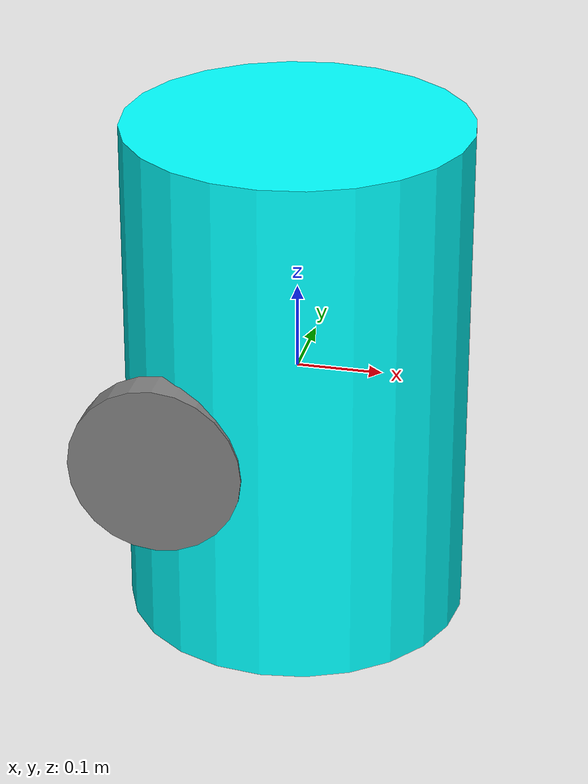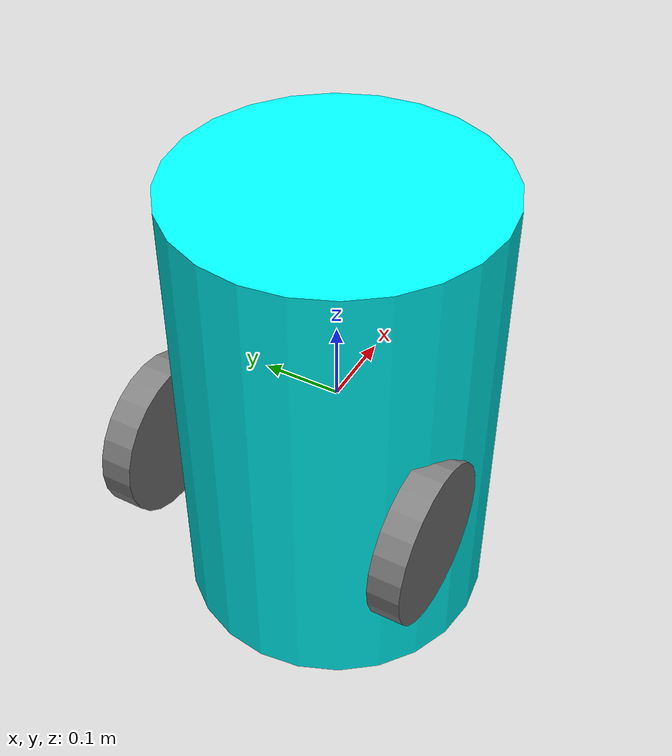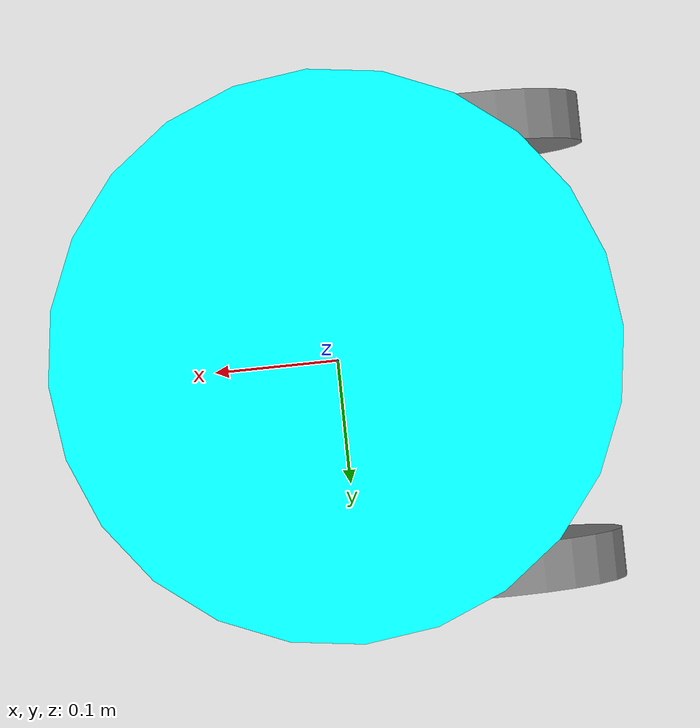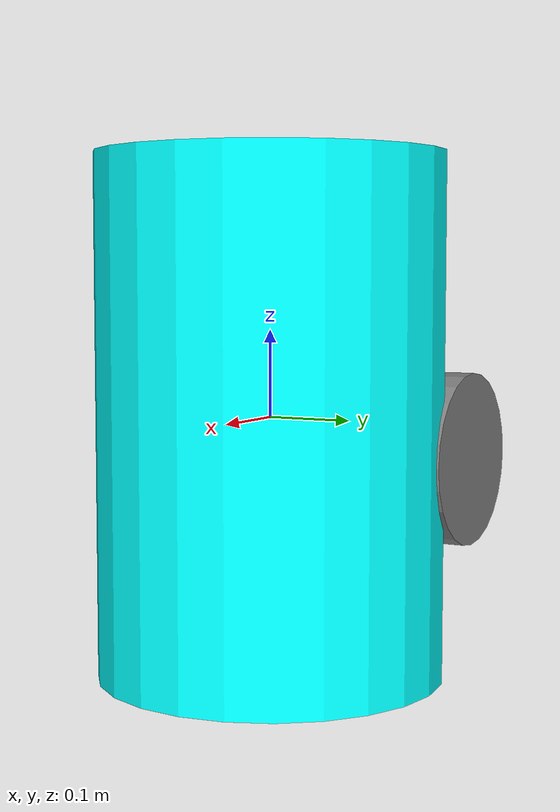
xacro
<?xml version="1.0"?>
<robot name="sam_bot" xmlns:xacro="http://ros.org/wiki/xacro">

  <!-- Define robot constants -->
  <xacro:property name="base_width" value="0.31"/>
  <xacro:property name="base_length" value="0.6"/>
  <xacro:property name="base_radius" value="0.2"/>
  <xacro:property name="base_height" value="0.18"/>

  <xacro:property name="wheel_radius" value="0.10"/>
  <xacro:property name="wheel_width" value="0.04"/>
  <xacro:property name="wheel_ygap" value="0.025"/>
  <xacro:property name="wheel_zoff" value="0.05"/>
  <xacro:property name="wheel_xoff" value="0.12"/>

  <xacro:property name="caster_xoff" value="0.14"/>

  <!-- Define intertial property macros  -->
  <xacro:macro name="box_inertia" params="m w h d">
    <inertial>
      <origin xyz="0 0 0" rpy="${pi/2} 0 ${pi/2}"/>
      <mass value="${m}"/>
      <inertia ixx="${(m/12) * (h*h + d*d)}" ixy="0.0" ixz="0.0" iyy="${(m/12) * (w*w + d*d)}" iyz="0.0" izz="${(m/12) * (w*w + h*h)}"/>
    </inertial>
  </xacro:macro>

  <xacro:macro name="cylinder_inertia" params="m r h">
    <inertial>
      <origin xyz="0 0 0" rpy="${pi/2} 0 0" />
      <mass value="${m}"/>
      <inertia ixx="${(m/12) * (3*r*r + h*h)}" ixy = "0" ixz = "0" iyy="${(m/12) * (3*r*r + h*h)}" iyz = "0" izz="${(m/2) * (r*r)}"/>
    </inertial>
  </xacro:macro>

  <xacro:macro name="sphere_inertia" params="m r">
    <inertial>
      <mass value="${m}"/>
      <inertia ixx="${(2/5) * m * (r*r)}" ixy="0.0" ixz="0.0" iyy="${(2/5) * m * (r*r)}" iyz="0.0" izz="${(2/5) * m * (r*r)}"/>
    </inertial>
  </xacro:macro>

  <!-- Robot Base -->
  <link name="base_link">
    <visual>
      <geometry>
        <cylinder radius="${base_radius}" length="${base_length}"/>
      </geometry>
      <material name="blue">
        <color rgba="0 1.0 1.0 1.0"/>
      </material>
    </visual>

    <collision>
      <geometry>
        <cylinder radius="${base_radius}" length="${base_length}"/>
      </geometry>
    </collision>

    <xacro:cylinder_inertia m="0.5" r="${base_radius}" h="${base_length}"/>
  </link>

  <!-- Robot Footprint -->
  <link name="base_footprint"/>

  <joint name="base_joint" type="fixed">
    <parent link="base_link"/>
    <child link="base_footprint"/>
    <origin xyz="0.0 0.0 ${-(wheel_radius+wheel_zoff)}" rpy="0 0 0"/>
  </joint>

  <!-- Wheels -->
  <xacro:macro name="wheel" params="prefix x_reflect y_reflect">
    <link name="${prefix}_link">
      <visual>
        <origin xyz="0 0 0" rpy="${pi/2} 0 0"/>
        <geometry>
            <cylinder radius="${wheel_radius}" length="${wheel_width}"/>
        </geometry>
        <material name="Cyan">
          <color rgba="0.5 0.5 0.5 1.0"/>
        </material>
      </visual>

      <collision>
        <origin xyz="0 0 0" rpy="${pi/2} 0 0"/>
        <geometry>
          <cylinder radius="${wheel_radius}" length="${wheel_width}"/>
        </geometry>
      </collision>

      <xacro:cylinder_inertia m="0.5" r="${wheel_radius}" h="${wheel_width}"/>
    </link>

    <joint name="${prefix}_joint" type="continuous">
      <parent link="base_link"/>
      <child link="${prefix}_link"/>
      <origin xyz="${x_reflect*wheel_xoff} ${y_reflect*(base_width/2+wheel_ygap)} ${-wheel_zoff}" rpy="0 0 0"/>
      <axis xyz="0 1 0"/>
    </joint>
  </xacro:macro>

  <xacro:wheel prefix="drivewhl_l" x_reflect="-1" y_reflect="1" />
  <xacro:wheel prefix="drivewhl_r" x_reflect="-1" y_reflect="-1" />

  <!-- Caster Wheel -->
  <link name="front_caster">
    <visual>
      <geometry>
        <sphere radius="${(wheel_radius+wheel_zoff-(base_height/2))}"/>
      </geometry>
      <material name="Cyan">
        <color rgba="0 1.0 1.0 1.0"/>
      </material>
    </visual>

    <collision>
      <origin xyz="0 0 0" rpy="0 0 0"/>
      <geometry>
        <sphere radius="${(wheel_radius+wheel_zoff-(base_height/2))}"/>
      </geometry>
    </collision>

    <xacro:sphere_inertia m="0.5" r="${(wheel_radius+wheel_zoff-(base_height/2))}"/>
  </link>

  <joint name="caster_joint" type="fixed">
    <parent link="base_link"/>
    <child link="front_caster"/>
    <origin xyz="${caster_xoff} 0.0 ${-(base_height/2)}" rpy="0 0 0"/>
  </joint>

</robot>
